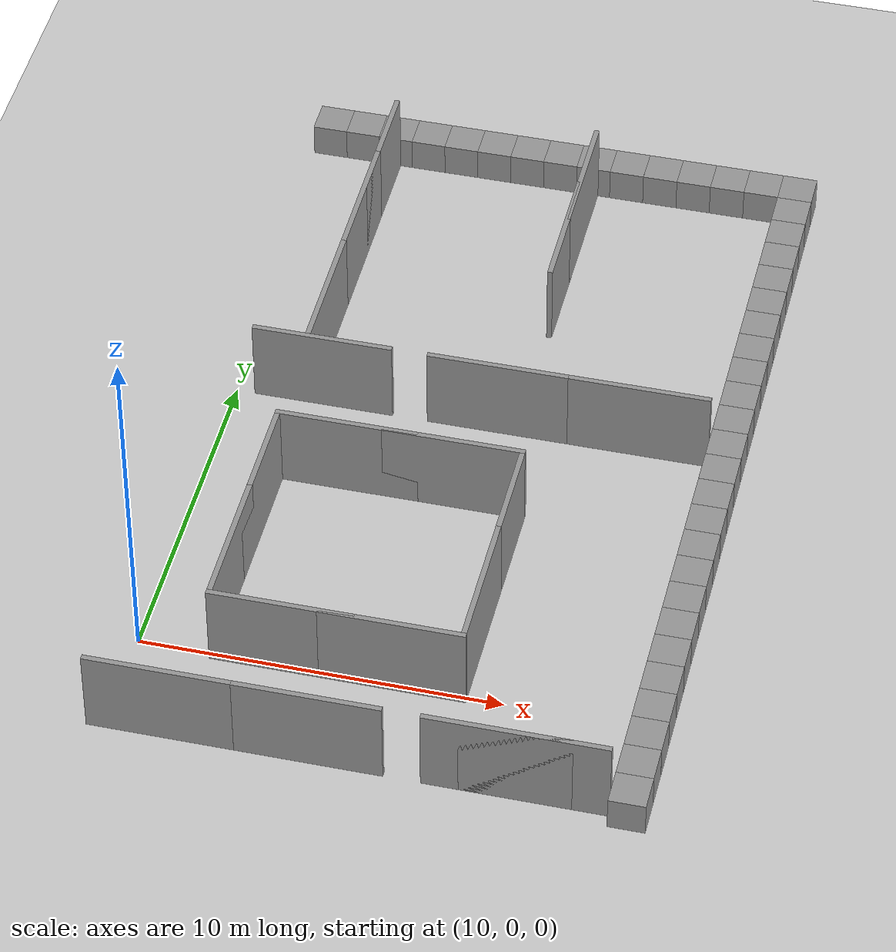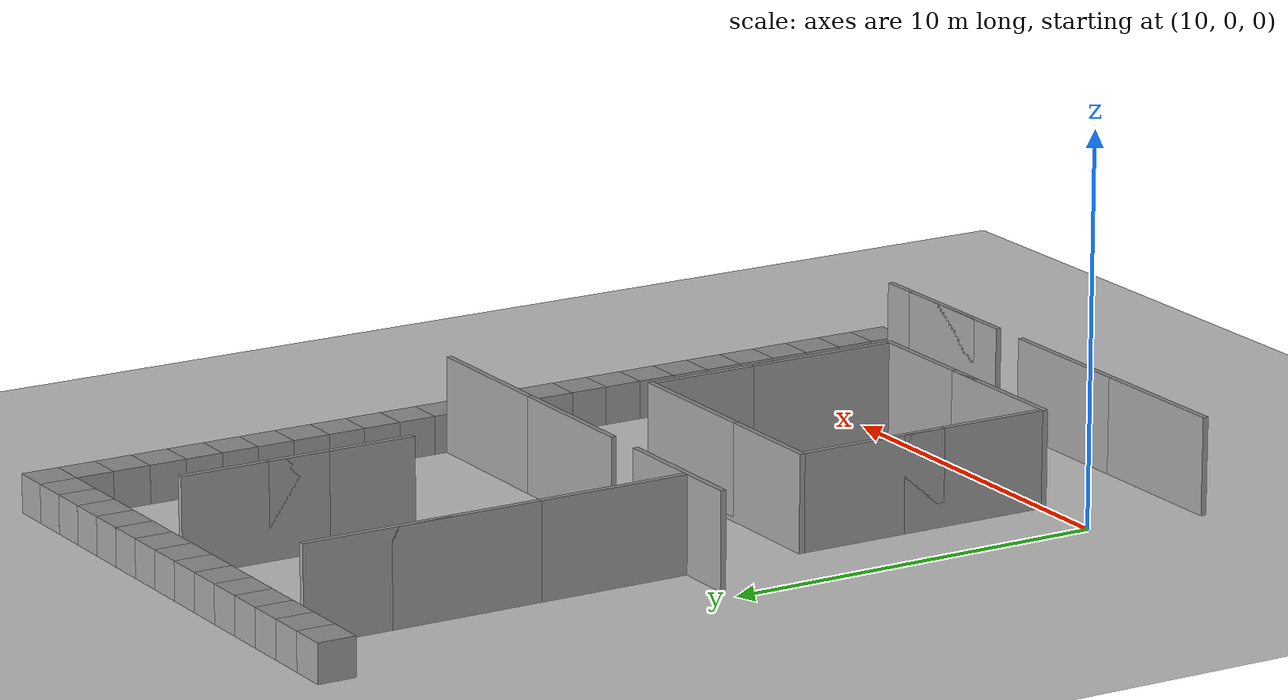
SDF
<sdf version="1.6">
 <world name="default">
  <model name="ground_plane">
   <static>1</static>
   <link name="link">
    <collision name="collision">
     <geometry><plane><normal>0 0 1</normal><size>100 100</size></plane></geometry>
     <surface><friction><ode><mu>100</mu><mu2>50</mu2></ode></friction></surface>
    </collision>
    <visual name="visual">
     <cast_shadows>0</cast_shadows>
     <geometry><plane><normal>0 0 1</normal><size>100 100</size></plane></geometry>
     <material>
      <script><uri>file://media/materials/scripts/gazebo.material</uri><name>Gazebo/Grey</name></script>
     </material>
    </visual>
    <velocity_decay><linear>0</linear><angular>0</angular></velocity_decay>
   </link>
  </model>
  <model name="unit_box_113">
   <pose>10 21 0.5 0 0 1e-06</pose>
   <static>1</static>
   <link name="link">
    <inertial>
     <mass>1</mass>
     <inertia><ixx>1</ixx><ixy>0</ixy><ixz>0</ixz><iyy>1</iyy><iyz>0</iyz><izz>1</izz></inertia>
    </inertial>
    <collision name="collision"><geometry><box><size>1 1 1</size></box></geometry></collision>
    <visual name="visual">
     <geometry><box><size>1 1 1</size></box></geometry>
     <material>
      <script><uri>file://media/materials/scripts/gazebo.material</uri><name>Gazebo/Grey</name></script>
     </material>
    </visual>
    <velocity_decay><linear>0</linear><angular>0</angular></velocity_decay>
   </link>
   <static>1</static>
  </model>
  <model name="unit_box_114">
   <pose>11 21 0.5 0 0 1e-06</pose>
   <static>1</static>
   <link name="link">
    <inertial>
     <mass>1</mass>
     <inertia><ixx>1</ixx><ixy>0</ixy><ixz>0</ixz><iyy>1</iyy><iyz>0</iyz><izz>1</izz></inertia>
    </inertial>
    <collision name="collision"><geometry><box><size>1 1 1</size></box></geometry></collision>
    <visual name="visual">
     <geometry><box><size>1 1 1</size></box></geometry>
     <material>
      <script><uri>file://media/materials/scripts/gazebo.material</uri><name>Gazebo/Grey</name></script>
     </material>
    </visual>
    <velocity_decay><linear>0</linear><angular>0</angular></velocity_decay>
   </link>
   <static>1</static>
  </model>
  <model name="unit_box_115">
   <pose>12 21 0.5 0 0 -2e-06</pose>
   <static>1</static>
   <link name="link">
    <inertial>
     <mass>1</mass>
     <inertia><ixx>1</ixx><ixy>0</ixy><ixz>0</ixz><iyy>1</iyy><iyz>0</iyz><izz>1</izz></inertia>
    </inertial>
    <collision name="collision"><geometry><box><size>1 1 1</size></box></geometry></collision>
    <visual name="visual">
     <geometry><box><size>1 1 1</size></box></geometry>
     <material>
      <script><uri>file://media/materials/scripts/gazebo.material</uri><name>Gazebo/Grey</name></script>
     </material>
    </visual>
    <velocity_decay><linear>0</linear><angular>0</angular></velocity_decay>
   </link>
   <static>1</static>
  </model>
  <model name="unit_box_116">
   <pose>13 21 0.5 0 0 -2e-06</pose>
   <static>1</static>
   <link name="link">
    <inertial>
     <mass>1</mass>
     <inertia><ixx>1</ixx><ixy>0</ixy><ixz>0</ixz><iyy>1</iyy><iyz>0</iyz><izz>1</izz></inertia>
    </inertial>
    <collision name="collision"><geometry><box><size>1 1 1</size></box></geometry></collision>
    <visual name="visual">
     <geometry><box><size>1 1 1</size></box></geometry>
     <material>
      <script><uri>file://media/materials/scripts/gazebo.material</uri><name>Gazebo/Grey</name></script>
     </material>
    </visual>
    <velocity_decay><linear>0</linear><angular>0</angular></velocity_decay>
   </link>
   <static>1</static>
  </model>
  <model name="unit_box_121">
   <pose>14 21 0.5 0 0 -2e-06</pose>
   <static>1</static>
   <link name="link">
    <inertial>
     <mass>1</mass>
     <inertia><ixx>1</ixx><ixy>0</ixy><ixz>0</ixz><iyy>1</iyy><iyz>0</iyz><izz>1</izz></inertia>
    </inertial>
    <collision name="collision"><geometry><box><size>1 1 1</size></box></geometry></collision>
    <visual name="visual">
     <geometry><box><size>1 1 1</size></box></geometry>
     <material>
      <script><uri>file://media/materials/scripts/gazebo.material</uri><name>Gazebo/Grey</name></script>
     </material>
    </visual>
    <velocity_decay><linear>0</linear><angular>0</angular></velocity_decay>
   </link>
   <static>1</static>
  </model>
  <model name="unit_box_134">
   <pose>15 21 0.5 0 0 1e-06</pose>
   <static>1</static>
   <link name="link">
    <inertial>
     <mass>1</mass>
     <inertia><ixx>1</ixx><ixy>0</ixy><ixz>0</ixz><iyy>1</iyy><iyz>0</iyz><izz>1</izz></inertia>
    </inertial>
    <collision name="collision"><geometry><box><size>1 1 1</size></box></geometry></collision>
    <visual name="visual">
     <geometry><box><size>1 1 1</size></box></geometry>
     <material>
      <script><uri>file://media/materials/scripts/gazebo.material</uri><name>Gazebo/Grey</name></script>
     </material>
    </visual>
    <velocity_decay><linear>0</linear><angular>0</angular></velocity_decay>
   </link>
   <static>1</static>
  </model>
  <model name="unit_box_135">
   <pose>16 21 0.5 0 0 1e-06</pose>
   <static>1</static>
   <link name="link">
    <inertial>
     <mass>1</mass>
     <inertia><ixx>1</ixx><ixy>0</ixy><ixz>0</ixz><iyy>1</iyy><iyz>0</iyz><izz>1</izz></inertia>
    </inertial>
    <collision name="collision"><geometry><box><size>1 1 1</size></box></geometry></collision>
    <visual name="visual">
     <geometry><box><size>1 1 1</size></box></geometry>
     <material>
      <script><uri>file://media/materials/scripts/gazebo.material</uri><name>Gazebo/Grey</name></script>
     </material>
    </visual>
    <velocity_decay><linear>0</linear><angular>0</angular></velocity_decay>
   </link>
   <static>1</static>
  </model>
  <model name="unit_box_136">
   <pose>17 21 0.5 0 0 3e-06</pose>
   <static>1</static>
   <link name="link">
    <inertial>
     <mass>1</mass>
     <inertia><ixx>1</ixx><ixy>0</ixy><ixz>0</ixz><iyy>1</iyy><iyz>0</iyz><izz>1</izz></inertia>
    </inertial>
    <collision name="collision"><geometry><box><size>1 1 1</size></box></geometry></collision>
    <visual name="visual">
     <geometry><box><size>1 1 1</size></box></geometry>
     <material>
      <script><uri>file://media/materials/scripts/gazebo.material</uri><name>Gazebo/Grey</name></script>
     </material>
    </visual>
    <velocity_decay><linear>0</linear><angular>0</angular></velocity_decay>
   </link>
   <static>1</static>
  </model>
  <model name="unit_box_137">
   <pose>18 21 0.5 0 0 3e-06</pose>
   <static>1</static>
   <link name="link">
    <inertial>
     <mass>1</mass>
     <inertia><ixx>1</ixx><ixy>0</ixy><ixz>0</ixz><iyy>1</iyy><iyz>0</iyz><izz>1</izz></inertia>
    </inertial>
    <collision name="collision"><geometry><box><size>1 1 1</size></box></geometry></collision>
    <visual name="visual">
     <geometry><box><size>1 1 1</size></box></geometry>
     <material>
      <script><uri>file://media/materials/scripts/gazebo.material</uri><name>Gazebo/Grey</name></script>
     </material>
    </visual>
    <velocity_decay><linear>0</linear><angular>0</angular></velocity_decay>
   </link>
   <static>1</static>
  </model>
  <model name="unit_box_146">
   <pose>19 21 0.5 0 0 3e-06</pose>
   <static>1</static>
   <link name="link">
    <inertial>
     <mass>1</mass>
     <inertia><ixx>1</ixx><ixy>0</ixy><ixz>0</ixz><iyy>1</iyy><iyz>0</iyz><izz>1</izz></inertia>
    </inertial>
    <collision name="collision"><geometry><box><size>1 1 1</size></box></geometry></collision>
    <visual name="visual">
     <geometry><box><size>1 1 1</size></box></geometry>
     <material>
      <script><uri>file://media/materials/scripts/gazebo.material</uri><name>Gazebo/Grey</name></script>
     </material>
    </visual>
    <velocity_decay><linear>0</linear><angular>0</angular></velocity_decay>
   </link>
   <static>1</static>
  </model>
  <model name="unit_box_147">
   <pose>20.0003 21 0.5 0 0 1.4e-05</pose>
   <static>1</static>
   <link name="link">
    <inertial>
     <mass>1</mass>
     <inertia><ixx>1</ixx><ixy>0</ixy><ixz>0</ixz><iyy>1</iyy><iyz>0</iyz><izz>1</izz></inertia>
    </inertial>
    <collision name="collision"><geometry><box><size>1 1 1</size></box></geometry></collision>
    <visual name="visual">
     <geometry><box><size>1 1 1</size></box></geometry>
     <material>
      <script><uri>file://media/materials/scripts/gazebo.material</uri><name>Gazebo/Grey</name></script>
     </material>
    </visual>
    <velocity_decay><linear>0</linear><angular>0</angular></velocity_decay>
   </link>
   <static>1</static>
  </model>
  <model name="unit_box_148">
   <pose>21.0003 21 0.5 0 0 3.3e-05</pose>
   <static>1</static>
   <link name="link">
    <inertial>
     <mass>1</mass>
     <inertia><ixx>1</ixx><ixy>0</ixy><ixz>0</ixz><iyy>1</iyy><iyz>0</iyz><izz>1</izz></inertia>
    </inertial>
    <collision name="collision"><geometry><box><size>1 1 1</size></box></geometry></collision>
    <visual name="visual">
     <geometry><box><size>1 1 1</size></box></geometry>
     <material>
      <script><uri>file://media/materials/scripts/gazebo.material</uri><name>Gazebo/Grey</name></script>
     </material>
    </visual>
    <velocity_decay><linear>0</linear><angular>0</angular></velocity_decay>
   </link>
   <static>1</static>
  </model>
  <model name="unit_box_150">
   <pose>22.0003 21.0001 0.5 0 0 7.3e-05</pose>
   <static>1</static>
   <link name="link">
    <inertial>
     <mass>1</mass>
     <inertia><ixx>1</ixx><ixy>0</ixy><ixz>0</ixz><iyy>1</iyy><iyz>0</iyz><izz>1</izz></inertia>
    </inertial>
    <collision name="collision"><geometry><box><size>1 1 1</size></box></geometry></collision>
    <visual name="visual">
     <geometry><box><size>1 1 1</size></box></geometry>
     <material>
      <script><uri>file://media/materials/scripts/gazebo.material</uri><name>Gazebo/Grey</name></script>
     </material>
    </visual>
    <velocity_decay><linear>0</linear><angular>0</angular></velocity_decay>
   </link>
   <static>1</static>
  </model>
  <model name="unit_box_151">
   <pose>23.0004 21.0004 0.5 0 0 0.000111</pose>
   <static>1</static>
   <link name="link">
    <inertial>
     <mass>1</mass>
     <inertia><ixx>1</ixx><ixy>0</ixy><ixz>0</ixz><iyy>1</iyy><iyz>0</iyz><izz>1</izz></inertia>
    </inertial>
    <collision name="collision"><geometry><box><size>1 1 1</size></box></geometry></collision>
    <visual name="visual">
     <geometry><box><size>1 1 1</size></box></geometry>
     <material>
      <script><uri>file://media/materials/scripts/gazebo.material</uri><name>Gazebo/Grey</name></script>
     </material>
    </visual>
    <velocity_decay><linear>0</linear><angular>0</angular></velocity_decay>
   </link>
   <static>1</static>
  </model>
  <model name="unit_box_152">
   <pose>24.0004 21.0005 0.5 0 0 4.7e-05</pose>
   <static>1</static>
   <link name="link">
    <inertial>
     <mass>1</mass>
     <inertia><ixx>1</ixx><ixy>0</ixy><ixz>0</ixz><iyy>1</iyy><iyz>0</iyz><izz>1</izz></inertia>
    </inertial>
    <collision name="collision"><geometry><box><size>1 1 1</size></box></geometry></collision>
    <visual name="visual">
     <geometry><box><size>1 1 1</size></box></geometry>
     <material>
      <script><uri>file://media/materials/scripts/gazebo.material</uri><name>Gazebo/Grey</name></script>
     </material>
    </visual>
    <velocity_decay><linear>0</linear><angular>0</angular></velocity_decay>
   </link>
   <static>1</static>
  </model>
  <model name="unit_box_153">
   <pose>24.0001 20.0005 0.5 0 0 2.5e-05</pose>
   <static>1</static>
   <link name="link">
    <inertial>
     <mass>1</mass>
     <inertia><ixx>1</ixx><ixy>0</ixy><ixz>0</ixz><iyy>1</iyy><iyz>0</iyz><izz>1</izz></inertia>
    </inertial>
    <collision name="collision"><geometry><box><size>1 1 1</size></box></geometry></collision>
    <visual name="visual">
     <geometry><box><size>1 1 1</size></box></geometry>
     <material>
      <script><uri>file://media/materials/scripts/gazebo.material</uri><name>Gazebo/Grey</name></script>
     </material>
    </visual>
    <velocity_decay><linear>0</linear><angular>0</angular></velocity_decay>
   </link>
   <static>1</static>
  </model>
  <model name="unit_box_154">
   <pose>24.0001 19.0005 0.5 0 0 1.7e-05</pose>
   <static>1</static>
   <link name="link">
    <inertial>
     <mass>1</mass>
     <inertia><ixx>1</ixx><ixy>0</ixy><ixz>0</ixz><iyy>1</iyy><iyz>0</iyz><izz>1</izz></inertia>
    </inertial>
    <collision name="collision"><geometry><box><size>1 1 1</size></box></geometry></collision>
    <visual name="visual">
     <geometry><box><size>1 1 1</size></box></geometry>
     <material>
      <script><uri>file://media/materials/scripts/gazebo.material</uri><name>Gazebo/Grey</name></script>
     </material>
    </visual>
    <velocity_decay><linear>0</linear><angular>0</angular></velocity_decay>
   </link>
   <static>1</static>
  </model>
  <model name="unit_box_155">
   <pose>24.0001 18.0005 0.5 0 0 1.3e-05</pose>
   <static>1</static>
   <link name="link">
    <inertial>
     <mass>1</mass>
     <inertia><ixx>1</ixx><ixy>0</ixy><ixz>0</ixz><iyy>1</iyy><iyz>0</iyz><izz>1</izz></inertia>
    </inertial>
    <collision name="collision"><geometry><box><size>1 1 1</size></box></geometry></collision>
    <visual name="visual">
     <geometry><box><size>1 1 1</size></box></geometry>
     <material>
      <script><uri>file://media/materials/scripts/gazebo.material</uri><name>Gazebo/Grey</name></script>
     </material>
    </visual>
    <velocity_decay><linear>0</linear><angular>0</angular></velocity_decay>
   </link>
   <static>1</static>
  </model>
  <model name="unit_box_156">
   <pose>24.0001 17.0005 0.5 0 0 1.4e-05</pose>
   <static>1</static>
   <link name="link">
    <inertial>
     <mass>1</mass>
     <inertia><ixx>1</ixx><ixy>0</ixy><ixz>0</ixz><iyy>1</iyy><iyz>0</iyz><izz>1</izz></inertia>
    </inertial>
    <collision name="collision"><geometry><box><size>1 1 1</size></box></geometry></collision>
    <visual name="visual">
     <geometry><box><size>1 1 1</size></box></geometry>
     <material>
      <script><uri>file://media/materials/scripts/gazebo.material</uri><name>Gazebo/Grey</name></script>
     </material>
    </visual>
    <velocity_decay><linear>0</linear><angular>0</angular></velocity_decay>
   </link>
   <static>1</static>
  </model>
  <model name="unit_box_157">
   <pose>24.0002 16.0005 0.5 0 0 1.5e-05</pose>
   <static>1</static>
   <link name="link">
    <inertial>
     <mass>1</mass>
     <inertia><ixx>1</ixx><ixy>0</ixy><ixz>0</ixz><iyy>1</iyy><iyz>0</iyz><izz>1</izz></inertia>
    </inertial>
    <collision name="collision"><geometry><box><size>1 1 1</size></box></geometry></collision>
    <visual name="visual">
     <geometry><box><size>1 1 1</size></box></geometry>
     <material>
      <script><uri>file://media/materials/scripts/gazebo.material</uri><name>Gazebo/Grey</name></script>
     </material>
    </visual>
    <velocity_decay><linear>0</linear><angular>0</angular></velocity_decay>
   </link>
   <static>1</static>
  </model>
  <model name="unit_box_158">
   <pose>24.0001 15.0005 0.5 0 0 1.7e-05</pose>
   <static>1</static>
   <link name="link">
    <inertial>
     <mass>1</mass>
     <inertia><ixx>1</ixx><ixy>0</ixy><ixz>0</ixz><iyy>1</iyy><iyz>0</iyz><izz>1</izz></inertia>
    </inertial>
    <collision name="collision"><geometry><box><size>1 1 1</size></box></geometry></collision>
    <visual name="visual">
     <geometry><box><size>1 1 1</size></box></geometry>
     <material>
      <script><uri>file://media/materials/scripts/gazebo.material</uri><name>Gazebo/Grey</name></script>
     </material>
    </visual>
    <velocity_decay><linear>0</linear><angular>0</angular></velocity_decay>
   </link>
   <static>1</static>
  </model>
  <model name="unit_box_159">
   <pose>24 14.0005 0.5 0 0 2e-05</pose>
   <static>1</static>
   <link name="link">
    <inertial>
     <mass>1</mass>
     <inertia><ixx>1</ixx><ixy>0</ixy><ixz>0</ixz><iyy>1</iyy><iyz>0</iyz><izz>1</izz></inertia>
    </inertial>
    <collision name="collision"><geometry><box><size>1 1 1</size></box></geometry></collision>
    <visual name="visual">
     <geometry><box><size>1 1 1</size></box></geometry>
     <material>
      <script><uri>file://media/materials/scripts/gazebo.material</uri><name>Gazebo/Grey</name></script>
     </material>
    </visual>
    <velocity_decay><linear>0</linear><angular>0</angular></velocity_decay>
   </link>
   <static>1</static>
  </model>
  <model name="unit_box_160">
   <pose>24 13.0005 0.5 0 0 2.1e-05</pose>
   <static>1</static>
   <link name="link">
    <inertial>
     <mass>1</mass>
     <inertia><ixx>1</ixx><ixy>0</ixy><ixz>0</ixz><iyy>1</iyy><iyz>0</iyz><izz>1</izz></inertia>
    </inertial>
    <collision name="collision"><geometry><box><size>1 1 1</size></box></geometry></collision>
    <visual name="visual">
     <geometry><box><size>1 1 1</size></box></geometry>
     <material>
      <script><uri>file://media/materials/scripts/gazebo.material</uri><name>Gazebo/Grey</name></script>
     </material>
    </visual>
    <velocity_decay><linear>0</linear><angular>0</angular></velocity_decay>
   </link>
   <static>1</static>
  </model>
  <model name="unit_box_161">
   <pose>24.0001 12.0005 0.5 0 0 2.2e-05</pose>
   <static>1</static>
   <link name="link">
    <inertial>
     <mass>1</mass>
     <inertia><ixx>1</ixx><ixy>0</ixy><ixz>0</ixz><iyy>1</iyy><iyz>0</iyz><izz>1</izz></inertia>
    </inertial>
    <collision name="collision"><geometry><box><size>1 1 1</size></box></geometry></collision>
    <visual name="visual">
     <geometry><box><size>1 1 1</size></box></geometry>
     <material>
      <script><uri>file://media/materials/scripts/gazebo.material</uri><name>Gazebo/Grey</name></script>
     </material>
    </visual>
    <velocity_decay><linear>0</linear><angular>0</angular></velocity_decay>
   </link>
   <static>1</static>
  </model>
  <model name="unit_box_162">
   <pose>24.0002 11.0004 0.5 0 0 4e-05</pose>
   <static>1</static>
   <link name="link">
    <inertial>
     <mass>1</mass>
     <inertia><ixx>1</ixx><ixy>0</ixy><ixz>0</ixz><iyy>1</iyy><iyz>0</iyz><izz>1</izz></inertia>
    </inertial>
    <collision name="collision"><geometry><box><size>1 1 1</size></box></geometry></collision>
    <visual name="visual">
     <geometry><box><size>1 1 1</size></box></geometry>
     <material>
      <script><uri>file://media/materials/scripts/gazebo.material</uri><name>Gazebo/Grey</name></script>
     </material>
    </visual>
    <velocity_decay><linear>0</linear><angular>0</angular></velocity_decay>
   </link>
   <static>1</static>
  </model>
  <model name="unit_box_182">
   <pose>24.0018 -0.999661 0.5 0 0 7.7e-05</pose>
   <static>1</static>
   <link name="link">
    <inertial>
     <mass>1</mass>
     <inertia><ixx>1</ixx><ixy>0</ixy><ixz>0</ixz><iyy>1</iyy><iyz>0</iyz><izz>1</izz></inertia>
    </inertial>
    <collision name="collision"><geometry><box><size>1 1 1</size></box></geometry></collision>
    <visual name="visual">
     <geometry><box><size>1 1 1</size></box></geometry>
     <material>
      <script><uri>file://media/materials/scripts/gazebo.material</uri><name>Gazebo/Grey</name></script>
     </material>
    </visual>
    <velocity_decay><linear>0</linear><angular>0</angular></velocity_decay>
   </link>
   <static>1</static>
  </model>
  <model name="unit_box_188">
   <pose>24.0001 10.0004 0.5 0 0 3.9e-05</pose>
   <static>1</static>
   <link name="link">
    <inertial>
     <mass>1</mass>
     <inertia><ixx>1</ixx><ixy>0</ixy><ixz>0</ixz><iyy>1</iyy><iyz>0</iyz><izz>1</izz></inertia>
    </inertial>
    <collision name="collision"><geometry><box><size>1 1 1</size></box></geometry></collision>
    <visual name="visual">
     <geometry><box><size>1 1 1</size></box></geometry>
     <material>
      <script><uri>file://media/materials/scripts/gazebo.material</uri><name>Gazebo/Grey</name></script>
     </material>
    </visual>
    <velocity_decay><linear>0</linear><angular>0</angular></velocity_decay>
   </link>
   <static>1</static>
  </model>
  <model name="unit_box_189">
   <pose>24.0001 9.00043 0.5 0 0 4.6e-05</pose>
   <static>1</static>
   <link name="link">
    <inertial>
     <mass>1</mass>
     <inertia><ixx>1</ixx><ixy>0</ixy><ixz>0</ixz><iyy>1</iyy><iyz>0</iyz><izz>1</izz></inertia>
    </inertial>
    <collision name="collision"><geometry><box><size>1 1 1</size></box></geometry></collision>
    <visual name="visual">
     <geometry><box><size>1 1 1</size></box></geometry>
     <material>
      <script><uri>file://media/materials/scripts/gazebo.material</uri><name>Gazebo/Grey</name></script>
     </material>
    </visual>
    <velocity_decay><linear>0</linear><angular>0</angular></velocity_decay>
   </link>
   <static>1</static>
  </model>
  <model name="unit_box_190">
   <pose>24.0001 8.00042 0.5 0 0 3.9e-05</pose>
   <static>1</static>
   <link name="link">
    <inertial>
     <mass>1</mass>
     <inertia><ixx>1</ixx><ixy>0</ixy><ixz>0</ixz><iyy>1</iyy><iyz>0</iyz><izz>1</izz></inertia>
    </inertial>
    <collision name="collision"><geometry><box><size>1 1 1</size></box></geometry></collision>
    <visual name="visual">
     <geometry><box><size>1 1 1</size></box></geometry>
     <material>
      <script><uri>file://media/materials/scripts/gazebo.material</uri><name>Gazebo/Grey</name></script>
     </material>
    </visual>
    <velocity_decay><linear>0</linear><angular>0</angular></velocity_decay>
   </link>
   <static>1</static>
  </model>
  <model name="unit_box_191">
   <pose>24.0002 7.00042 0.5 0 0 3.8e-05</pose>
   <static>1</static>
   <link name="link">
    <inertial>
     <mass>1</mass>
     <inertia><ixx>1</ixx><ixy>0</ixy><ixz>0</ixz><iyy>1</iyy><iyz>0</iyz><izz>1</izz></inertia>
    </inertial>
    <collision name="collision"><geometry><box><size>1 1 1</size></box></geometry></collision>
    <visual name="visual">
     <geometry><box><size>1 1 1</size></box></geometry>
     <material>
      <script><uri>file://media/materials/scripts/gazebo.material</uri><name>Gazebo/Grey</name></script>
     </material>
    </visual>
    <velocity_decay><linear>0</linear><angular>0</angular></velocity_decay>
   </link>
   <static>1</static>
  </model>
  <model name="unit_box_192">
   <pose>24.0014 6.0 0.5 0 0 3.8e-05</pose>
   <static>1</static>
   <link name="link">
    <inertial>
     <mass>1</mass>
     <inertia><ixx>1</ixx><ixy>0</ixy><ixz>0</ixz><iyy>1</iyy><iyz>0</iyz><izz>1</izz></inertia>
    </inertial>
    <collision name="collision"><geometry><box><size>1 1 1</size></box></geometry></collision>
    <visual name="visual">
     <geometry><box><size>1 1 1</size></box></geometry>
     <material>
      <script><uri>file://media/materials/scripts/gazebo.material</uri><name>Gazebo/Grey</name></script>
     </material>
    </visual>
    <velocity_decay><linear>0</linear><angular>0</angular></velocity_decay>
   </link>
   <static>1</static>
  </model>
  <model name="unit_box_194">
   <pose>24.0008 5.0 0.5 0 0 0</pose>
   <static>1</static>
   <link name="link">
    <inertial>
     <mass>1</mass>
     <inertia><ixx>1</ixx><ixy>0</ixy><ixz>0</ixz><iyy>1</iyy><iyz>0</iyz><izz>1</izz></inertia>
    </inertial>
    <collision name="collision"><geometry><box><size>1 1 1</size></box></geometry></collision>
    <visual name="visual">
     <geometry><box><size>1 1 1</size></box></geometry>
     <material>
      <script><uri>file://media/materials/scripts/gazebo.material</uri><name>Gazebo/Grey</name></script>
     </material>
    </visual>
    <velocity_decay><linear>0</linear><angular>0</angular></velocity_decay>
   </link>
   <static>1</static>
  </model>
  <model name="unit_box_195">
   <pose>24.0001 4.0 0.5 0 0 0</pose>
   <static>1</static>
   <link name="link">
    <inertial>
     <mass>1</mass>
     <inertia><ixx>1</ixx><ixy>0</ixy><ixz>0</ixz><iyy>1</iyy><iyz>0</iyz><izz>1</izz></inertia>
    </inertial>
    <collision name="collision"><geometry><box><size>1 1 1</size></box></geometry></collision>
    <visual name="visual">
     <geometry><box><size>1 1 1</size></box></geometry>
     <material>
      <script><uri>file://media/materials/scripts/gazebo.material</uri><name>Gazebo/Grey</name></script>
     </material>
    </visual>
    <velocity_decay><linear>0</linear><angular>0</angular></velocity_decay>
   </link>
   <static>1</static>
  </model>
  <model name="unit_box_196">
   <pose>24 3.0 0.5 0 0 0</pose>
   <static>1</static>
   <link name="link">
    <inertial>
     <mass>1</mass>
     <inertia><ixx>1</ixx><ixy>0</ixy><ixz>0</ixz><iyy>1</iyy><iyz>0</iyz><izz>1</izz></inertia>
    </inertial>
    <collision name="collision"><geometry><box><size>1 1 1</size></box></geometry></collision>
    <visual name="visual">
     <geometry><box><size>1 1 1</size></box></geometry>
     <material>
      <script><uri>file://media/materials/scripts/gazebo.material</uri><name>Gazebo/Grey</name></script>
     </material>
    </visual>
    <velocity_decay><linear>0</linear><angular>0</angular></velocity_decay>
   </link>
   <static>1</static>
  </model>
  <model name="unit_box_197">
   <pose>23.9999 2.000 0.5 0 0 0</pose>
   <static>1</static>
   <link name="link">
    <inertial>
     <mass>1</mass>
     <inertia><ixx>1</ixx><ixy>0</ixy><ixz>0</ixz><iyy>1</iyy><iyz>0</iyz><izz>1</izz></inertia>
    </inertial>
    <collision name="collision"><geometry><box><size>1 1 1</size></box></geometry></collision>
    <visual name="visual">
     <geometry><box><size>1 1 1</size></box></geometry>
     <material>
      <script><uri>file://media/materials/scripts/gazebo.material</uri><name>Gazebo/Grey</name></script>
     </material>
    </visual>
    <velocity_decay><linear>0</linear><angular>0</angular></velocity_decay>
   </link>
   <static>1</static>
  </model>
  <model name="unit_box_198">
   <pose>23.9999 1.000 0.5 0 0 0</pose>
   <static>1</static>
   <link name="link">
    <inertial>
     <mass>1</mass>
     <inertia><ixx>1</ixx><ixy>0</ixy><ixz>0</ixz><iyy>1</iyy><iyz>0</iyz><izz>1</izz></inertia>
    </inertial>
    <collision name="collision"><geometry><box><size>1 1 1</size></box></geometry></collision>
    <visual name="visual">
     <geometry><box><size>1 1 1</size></box></geometry>
     <material>
      <script><uri>file://media/materials/scripts/gazebo.material</uri><name>Gazebo/Grey</name></script>
     </material>
    </visual>
    <velocity_decay><linear>0</linear><angular>0</angular></velocity_decay>
   </link>
   <static>1</static>
  </model>
  <model name="unit_box_199">
   <pose>23.9997 0.0 0.5 0 0 0</pose>
   <static>1</static>
   <link name="link">
    <inertial>
     <mass>1</mass>
     <inertia><ixx>1</ixx><ixy>0</ixy><ixz>0</ixz><iyy>1</iyy><iyz>0</iyz><izz>1</izz></inertia>
    </inertial>
    <collision name="collision"><geometry><box><size>1 1 1</size></box></geometry></collision>
    <visual name="visual">
     <geometry><box><size>1 1 1</size></box></geometry>
     <material>
      <script><uri>file://media/materials/scripts/gazebo.material</uri><name>Gazebo/Grey</name></script>
     </material>
    </visual>
    <velocity_decay><linear>0</linear><angular>0</angular></velocity_decay>
   </link>
   <static>1</static>
  </model>
  <model name="unit_box_204">
   <pose>24 -1.99999 0.5 0 0 1e-06</pose>
   <static>1</static>
   <link name="link">
    <inertial>
     <mass>1</mass>
     <inertia><ixx>1</ixx><ixy>0</ixy><ixz>0</ixz><iyy>1</iyy><iyz>0</iyz><izz>1</izz></inertia>
    </inertial>
    <collision name="collision"><geometry><box><size>1 1 1</size></box></geometry></collision>
    <visual name="visual">
     <geometry><box><size>1 1 1</size></box></geometry>
     <material>
      <script><uri>file://media/materials/scripts/gazebo.material</uri><name>Gazebo/Grey</name></script>
     </material>
    </visual>
    <velocity_decay><linear>0</linear><angular>0</angular></velocity_decay>
   </link>
   <static>1</static>
  </model>
  <model name="unit_box_205">
   <pose>24 -2.99999 0.5 0 0 1e-06</pose>
   <static>1</static>
   <link name="link">
    <inertial>
     <mass>1</mass>
     <inertia><ixx>1</ixx><ixy>0</ixy><ixz>0</ixz><iyy>1</iyy><iyz>0</iyz><izz>1</izz></inertia>
    </inertial>
    <collision name="collision"><geometry><box><size>1 1 1</size></box></geometry></collision>
    <visual name="visual">
     <geometry><box><size>1 1 1</size></box></geometry>
     <material>
      <script><uri>file://media/materials/scripts/gazebo.material</uri><name>Gazebo/Grey</name></script>
     </material>
    </visual>
    <velocity_decay><linear>0</linear><angular>0</angular></velocity_decay>
   </link>
   <static>1</static>
  </model>
  <model name="simple_wall_4x0.15_clone_1">
   <pose>11.5 -3.075 0 0 0 0</pose>
   <link name="Wall_0">
    <collision name="Wall_0_Collision">
     <geometry><box><size>4 0.15 2.5</size></box></geometry>
     <pose>0 0 1.25 0 0 0</pose>
    </collision>
    <visual name="Wall_0_Visual">
     <pose>0 0 1.25 0 0 0</pose>
     <geometry><box><size>4 0.15 2.5</size></box></geometry>
     <material>
      <script><uri>file://media/materials/scripts/gazebo.material</uri><name>Gazebo/Grey</name></script>
      <ambient>1 1 1 1</ambient>
     </material>
    </visual>
   </link>
   <static>1</static>
  </model>
  <model name="simple_wall_4x0.15_clone_2">
   <pose>15.5 -3.075 0 0 0 0</pose>
   <link name="Wall_0">
    <collision name="Wall_0_Collision">
     <geometry><box><size>4 0.15 2.5</size></box></geometry>
     <pose>0 0 1.25 0 0 0</pose>
    </collision>
    <visual name="Wall_0_Visual">
     <pose>0 0 1.25 0 0 0</pose>
     <geometry><box><size>4 0.15 2.5</size></box></geometry>
     <material>
      <script><uri>file://media/materials/scripts/gazebo.material</uri><name>Gazebo/Grey</name></script>
      <ambient>1 1 1 1</ambient>
     </material>
    </visual>
   </link>
   <static>1</static>
  </model>
  <model name="simple_wall_4x0.15_clone_3">
   <pose>20.5 -3.075 0 0 0 0</pose>
   <link name="Wall_0">
    <collision name="Wall_0_Collision">
     <geometry><box><size>4 0.15 2.5</size></box></geometry>
     <pose>0 0 1.25 0 0 0</pose>
    </collision>
    <visual name="Wall_0_Visual">
     <pose>0 0 1.25 0 0 0</pose>
     <geometry><box><size>4 0.15 2.5</size></box></geometry>
     <material>
      <script><uri>file://media/materials/scripts/gazebo.material</uri><name>Gazebo/Grey</name></script>
      <ambient>1 1 1 1</ambient>
     </material>
    </visual>
   </link>
   <static>1</static>
  </model>
  <model name="simple_wall_4x0.15_clone_3_clone">
   <pose>21.5 -3.075 0 0 0 0</pose>
   <link name="Wall_0">
    <collision name="Wall_0_Collision">
     <geometry><box><size>4 0.15 2.5</size></box></geometry>
     <pose>0 0 1.25 0 0 0</pose>
    </collision>
    <visual name="Wall_0_Visual">
     <pose>0 0 1.25 0 0 0</pose>
     <geometry><box><size>4 0.15 2.5</size></box></geometry>
     <material>
      <script><uri>file://media/materials/scripts/gazebo.material</uri><name>Gazebo/Grey</name></script>
      <ambient>1 1 1 1</ambient>
     </material>
    </visual>
   </link>
   <static>1</static>
  </model>
  <model name="simple_wall_4x0.15_clone_7">
   <pose>12.5 10.075 0 0 0 0</pose>
   <link name="Wall_0">
    <collision name="Wall_0_Collision">
     <geometry><box><size>4 0.15 2.5</size></box></geometry>
     <pose>0 0 1.25 0 0 0</pose>
    </collision>
    <visual name="Wall_0_Visual">
     <pose>0 0 1.25 0 0 0</pose>
     <geometry><box><size>4 0.15 2.5</size></box></geometry>
     <material>
      <script><uri>file://media/materials/scripts/gazebo.material</uri><name>Gazebo/Grey</name></script>
      <ambient>1 1 1 1</ambient>
     </material>
    </visual>
   </link>
   <static>1</static>
  </model>
  <model name="simple_wall_4x0.15_clone_8">
   <pose>17.5 10.075 0 0 0 0</pose>
   <link name="Wall_0">
    <collision name="Wall_0_Collision">
     <geometry><box><size>4 0.15 2.5</size></box></geometry>
     <pose>0 0 1.25 0 0 0</pose>
    </collision>
    <visual name="Wall_0_Visual">
     <pose>0 0 1.25 0 0 0</pose>
     <geometry><box><size>4 0.15 2.5</size></box></geometry>
     <material>
      <script><uri>file://media/materials/scripts/gazebo.material</uri><name>Gazebo/Grey</name></script>
      <ambient>1 1 1 1</ambient>
     </material>
    </visual>
   </link>
   <static>1</static>
  </model>
  <model name="simple_wall_4x0.15_clone_9">
   <pose>21.5 10.075 0 0 0 0</pose>
   <link name="Wall_0">
    <collision name="Wall_0_Collision">
     <geometry><box><size>4 0.15 2.5</size></box></geometry>
     <pose>0 0 1.25 0 0 0</pose>
    </collision>
    <visual name="Wall_0_Visual">
     <pose>0 0 1.25 0 0 0</pose>
     <geometry><box><size>4 0.15 2.5</size></box></geometry>
     <material>
      <script><uri>file://media/materials/scripts/gazebo.material</uri><name>Gazebo/Grey</name></script>
      <ambient>1 1 1 1</ambient>
     </material>
    </visual>
   </link>
   <static>1</static>
  </model>
  <model name="simple_wall_4x0.15_clone_3_clone_0_clone_12">
   <pose>12.075 12.15 0 0 0 -1.5707963267948</pose>
   <link name="Wall_0">
    <collision name="Wall_0_Collision">
     <geometry><box><size>4 0.15 2.5</size></box></geometry>
     <pose>0 0 1.25 0 0 0</pose>
    </collision>
    <visual name="Wall_0_Visual">
     <pose>0 0 1.25 0 0 0</pose>
     <geometry><box><size>4 0.15 2.5</size></box></geometry>
     <material>
      <script><uri>file://media/materials/scripts/gazebo.material</uri><name>Gazebo/Grey</name></script>
      <ambient>1 1 1 1</ambient>
     </material>
    </visual>
   </link>
   <static>1</static>
  </model>
  <model name="simple_wall_4x0.15_clone_3_clone_0_clone_13">
   <pose>12.075 16.15 0 0 0 -1.5707963267948</pose>
   <link name="Wall_0">
    <collision name="Wall_0_Collision">
     <geometry><box><size>4 0.15 2.5</size></box></geometry>
     <pose>0 0 1.25 0 0 0</pose>
    </collision>
    <visual name="Wall_0_Visual">
     <pose>0 0 1.25 0 0 0</pose>
     <geometry><box><size>4 0.15 2.5</size></box></geometry>
     <material>
      <script><uri>file://media/materials/scripts/gazebo.material</uri><name>Gazebo/Grey</name></script>
      <ambient>1 1 1 1</ambient>
     </material>
    </visual>
   </link>
   <static>1</static>
  </model>
  <model name="simple_wall_4x0.15_clone_3_clone_0_clone_14">
   <pose>12.075 18.5 0 0 0 -1.5707963267948</pose>
   <link name="Wall_0">
    <collision name="Wall_0_Collision">
     <geometry><box><size>4 0.15 2.5</size></box></geometry>
     <pose>0 0 1.25 0 0 0</pose>
    </collision>
    <visual name="Wall_0_Visual">
     <pose>0 0 1.25 0 0 0</pose>
     <geometry><box><size>4 0.15 2.5</size></box></geometry>
     <material>
      <script><uri>file://media/materials/scripts/gazebo.material</uri><name>Gazebo/Grey</name></script>
      <ambient>1 1 1 1</ambient>
     </material>
    </visual>
   </link>
   <static>1</static>
  </model>
  <model name="simple_wall_4x0.15_clone_3_clone_0_clone_15">
   <pose>18.075 18.5 0 0 0 -1.5707963267948</pose>
   <link name="Wall_0">
    <collision name="Wall_0_Collision">
     <geometry><box><size>4 0.15 2.5</size></box></geometry>
     <pose>0 0 1.25 0 0 0</pose>
    </collision>
    <visual name="Wall_0_Visual">
     <pose>0 0 1.25 0 0 0</pose>
     <geometry><box><size>4 0.15 2.5</size></box></geometry>
     <material>
      <script><uri>file://media/materials/scripts/gazebo.material</uri><name>Gazebo/Grey</name></script>
      <ambient>1 1 1 1</ambient>
     </material>
    </visual>
   </link>
   <static>1</static>
  </model>
  <model name="simple_wall_4x0.15_clone_3_clone_0_clone_16">
   <pose>18.075 16.15 0 0 0 -1.5707963267948</pose>
   <link name="Wall_0">
    <collision name="Wall_0_Collision">
     <geometry><box><size>4 0.15 2.5</size></box></geometry>
     <pose>0 0 1.25 0 0 0</pose>
    </collision>
    <visual name="Wall_0_Visual">
     <pose>0 0 1.25 0 0 0</pose>
     <geometry><box><size>4 0.15 2.5</size></box></geometry>
     <material>
      <script><uri>file://media/materials/scripts/gazebo.material</uri><name>Gazebo/Grey</name></script>
      <ambient>1 1 1 1</ambient>
     </material>
    </visual>
   </link>
   <static>1</static>
  </model>
  <model name="simple_wall_4x0.15_clone_14">
   <pose>14 -0.075 0 0 0 0</pose>
   <link name="Wall_0">
    <collision name="Wall_0_Collision">
     <geometry><box><size>4 0.15 2.5</size></box></geometry>
     <pose>0 0 1.25 0 0 0</pose>
    </collision>
    <visual name="Wall_0_Visual">
     <pose>0 0 1.25 0 0 0</pose>
     <geometry><box><size>4 0.15 2.5</size></box></geometry>
     <material>
      <script><uri>file://media/materials/scripts/gazebo.material</uri><name>Gazebo/Grey</name></script>
      <ambient>1 1 1 1</ambient>
     </material>
    </visual>
   </link>
   <static>1</static>
  </model>
  <model name="simple_wall_4x0.15_clone_15">
   <pose>17 -0.075 0 0 0 0</pose>
   <link name="Wall_0">
    <collision name="Wall_0_Collision">
     <geometry><box><size>4 0.15 2.5</size></box></geometry>
     <pose>0 0 1.25 0 0 0</pose>
    </collision>
    <visual name="Wall_0_Visual">
     <pose>0 0 1.25 0 0 0</pose>
     <geometry><box><size>4 0.15 2.5</size></box></geometry>
     <material>
      <script><uri>file://media/materials/scripts/gazebo.material</uri><name>Gazebo/Grey</name></script>
      <ambient>1 1 1 1</ambient>
     </material>
    </visual>
   </link>
   <static>1</static>
  </model>
  <model name="simple_wall_4x0.15_clone_16">
   <pose>17 6.925 0 0 0 0</pose>
   <link name="Wall_0">
    <collision name="Wall_0_Collision">
     <geometry><box><size>4 0.15 2.5</size></box></geometry>
     <pose>0 0 1.25 0 0 0</pose>
    </collision>
    <visual name="Wall_0_Visual">
     <pose>0 0 1.25 0 0 0</pose>
     <geometry><box><size>4 0.15 2.5</size></box></geometry>
     <material>
      <script><uri>file://media/materials/scripts/gazebo.material</uri><name>Gazebo/Grey</name></script>
      <ambient>1 1 1 1</ambient>
     </material>
    </visual>
   </link>
   <static>1</static>
  </model>
  <model name="simple_wall_4x0.15_clone_17">
   <pose>14 6.925 0 0 0 0</pose>
   <link name="Wall_0">
    <collision name="Wall_0_Collision">
     <geometry><box><size>4 0.15 2.5</size></box></geometry>
     <pose>0 0 1.25 0 0 0</pose>
    </collision>
    <visual name="Wall_0_Visual">
     <pose>0 0 1.25 0 0 0</pose>
     <geometry><box><size>4 0.15 2.5</size></box></geometry>
     <material>
      <script><uri>file://media/materials/scripts/gazebo.material</uri><name>Gazebo/Grey</name></script>
      <ambient>1 1 1 1</ambient>
     </material>
    </visual>
   </link>
   <static>1</static>
  </model>
  <model name="simple_wall_4x0.15_clone_3_clone_0_clone_21">
   <pose>12.075 2.0 0 0 0 -1.5707963267948</pose>
   <link name="Wall_0">
    <collision name="Wall_0_Collision">
     <geometry><box><size>4 0.15 2.5</size></box></geometry>
     <pose>0 0 1.25 0 0 0</pose>
    </collision>
    <visual name="Wall_0_Visual">
     <pose>0 0 1.25 0 0 0</pose>
     <geometry><box><size>4 0.15 2.5</size></box></geometry>
     <material>
      <script><uri>file://media/materials/scripts/gazebo.material</uri><name>Gazebo/Grey</name></script>
      <ambient>1 1 1 1</ambient>
     </material>
    </visual>
   </link>
   <static>1</static>
  </model>
  <model name="simple_wall_4x0.15_clone_3_clone_0_clone_22">
   <pose>12.075 4.85 0 0 0 -1.5707963267948</pose>
   <link name="Wall_0">
    <collision name="Wall_0_Collision">
     <geometry><box><size>4 0.15 2.5</size></box></geometry>
     <pose>0 0 1.25 0 0 0</pose>
    </collision>
    <visual name="Wall_0_Visual">
     <pose>0 0 1.25 0 0 0</pose>
     <geometry><box><size>4 0.15 2.5</size></box></geometry>
     <material>
      <script><uri>file://media/materials/scripts/gazebo.material</uri><name>Gazebo/Grey</name></script>
      <ambient>1 1 1 1</ambient>
     </material>
    </visual>
   </link>
   <static>1</static>
  </model>
  <model name="simple_wall_4x0.15_clone_3_clone_0_clone_23">
   <pose>18.925 2.0 0 0 0 -1.5707963267948</pose>
   <link name="Wall_0">
    <collision name="Wall_0_Collision">
     <geometry><box><size>4 0.15 2.5</size></box></geometry>
     <pose>0 0 1.25 0 0 0</pose>
    </collision>
    <visual name="Wall_0_Visual">
     <pose>0 0 1.25 0 0 0</pose>
     <geometry><box><size>4 0.15 2.5</size></box></geometry>
     <material>
      <script><uri>file://media/materials/scripts/gazebo.material</uri><name>Gazebo/Grey</name></script>
      <ambient>1 1 1 1</ambient>
     </material>
    </visual>
   </link>
   <static>1</static>
  </model>
  <model name="simple_wall_4x0.15_clone_3_clone_0_clone_24">
   <pose>18.925 4.85 0 0 0 -1.5707963267948</pose>
   <link name="Wall_0">
    <collision name="Wall_0_Collision">
     <geometry><box><size>4 0.15 2.5</size></box></geometry>
     <pose>0 0 1.25 0 0 0</pose>
    </collision>
    <visual name="Wall_0_Visual">
     <pose>0 0 1.25 0 0 0</pose>
     <geometry><box><size>4 0.15 2.5</size></box></geometry>
     <material>
      <script><uri>file://media/materials/scripts/gazebo.material</uri><name>Gazebo/Grey</name></script>
      <ambient>1 1 1 1</ambient>
     </material>
    </visual>
   </link>
   <static>1</static>
  </model>
 </world>
</sdf>
